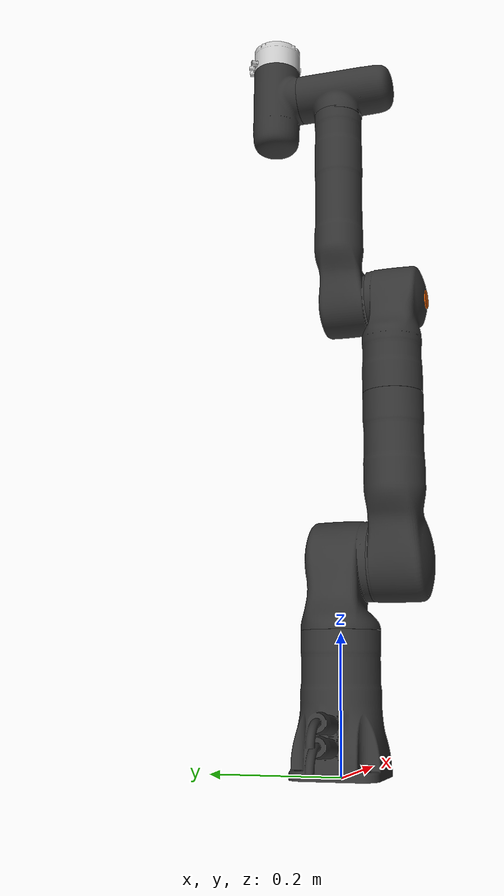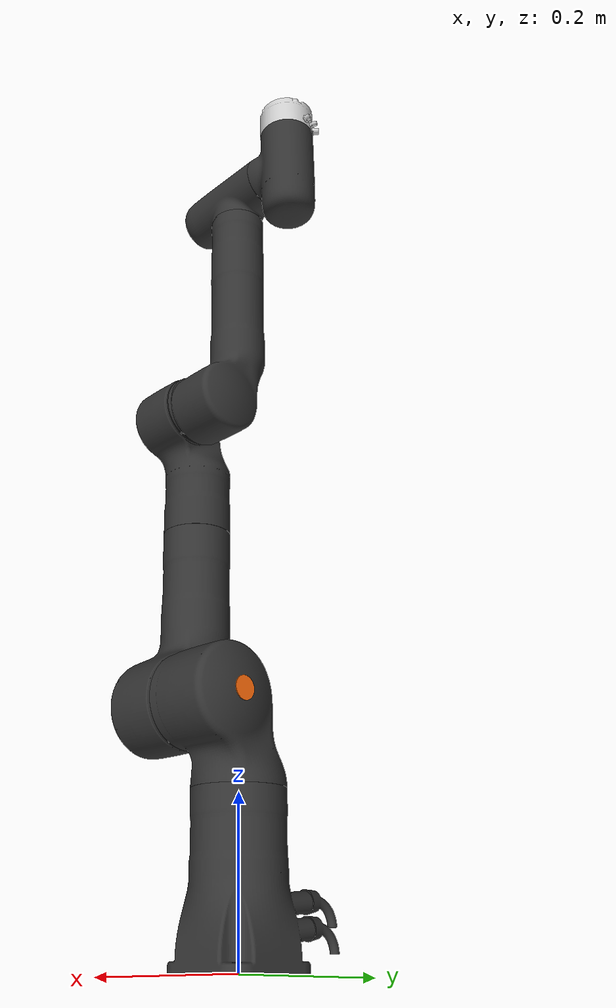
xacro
<?xml version="1.0" ?>
<robot name="kr2_robot_a810" model="a810" model-revision="051020-0" mechanical-revision="5" features="TIO" xmlns:xacro="http://www.ros.org/wiki/xacro">

  <!-- materials -->

  <material name="gray">
    <color rgba="0.5 0.5 0.5 1.0"/>
  </material>

  <material name="dark_gray">
    <color rgba="0.3 0.3 0.3 1.0"/>
  </material>

  <material name="light_gray">
    <color rgba="0.7 0.7 0.7 1.0"/>
  </material>

  <material name="black">
    <color rgba="0.1 0.1 0.1 1.0"/>
  </material>

  <material name="orange">
    <color rgba="${255/255} ${108/255} ${10/255} 1.0"/>
  </material>

  <!-- globals -->
  <xacro:property name="joints_damping" value="0.1" />

  <!-- links -->

  <!-- all dimensions should be input as measured in the drawing in mm and
       converted to real dimensions by multiplying with the scale property -->
  <xacro:property name="scale" value="0.001" />

  <xacro:property name="pi" value="3.14159265359" />
  <xacro:property name="pi_per_deg" value="${pi / 180.0}" />

  <xacro:property name="mass_multiplier" value="1.0" />

  <xacro:macro name="cylinder_inertia" params="mass radius length">
      <inertia ixx="0.003"
               ixy="0.0"
               ixz="0.0"
               iyy="0.003"
               iyz="0.0"
               izz="0.003"/>

  </xacro:macro>

  <xacro:macro name="visual_and_collision" params="xyz material rpy *geometry">
      <visual>
        <origin rpy="${rpy}" xyz="${xyz}" />
        <geometry>
          <xacro:insert_block name="geometry" />
        </geometry>
        <material name="${material}" />
      </visual>
      <collision>
        <origin rpy="${rpy}" xyz="${xyz}" />
        <geometry>
          <xacro:insert_block name="geometry" />
        </geometry>
      </collision>
  </xacro:macro>

  <link name="base">

    <xacro:property name="base_outer_radius" value="${ 80 * scale}" />
    <xacro:property name="base_inner_radius" value="${ 60 * scale}" />
    <xacro:property name="base_outer_height" value="${ 20 * scale}" />
    <xacro:property name="base_inner_height" value="${ 15 * scale}" />

    <xacro:property name="base_mass"         value="0.6" />
    <inertial>
      <origin rpy="0 0 0" xyz="0 0 0"/>
      <mass value="${base_mass*mass_multiplier}"/>
      <xacro:cylinder_inertia mass="${base_mass}"
                              radius="${base_outer_radius}"
                              length="${base_inner_height+base_outer_height}" />
    </inertial>

    <visual>
        <origin xyz="0 0 0" rpy="0 0 0" />
        <geometry>
          <mesh filename="package://kr_rviz_demo/meshes/a810/a810_Base.stl" scale="0.001 0.001 0.001"/>
        </geometry>
        <material name="">
          <color rgba="0.2 0.2 0.2 1" />
        </material>
    </visual>

  </link>

  <link name="link1">

    <xacro:property name="link1_radius" value="${ 60 * scale}" />
    <xacro:property name="link1_length" value="${ 308.7 * scale - 35 * scale}" />
    <xacro:property name="link1_hinge_length"  value="${  130   * scale}"   />
    <xacro:property name="link1_hinge_radius"  value="${  57.5 * scale}" />

    <xacro:property name="link1_mass"   value="4.58" />

    <inertial>
      <origin rpy="0 0 0" xyz="0 0 ${link1_length/2}"/>
      <mass value="${link1_mass*mass_multiplier}"/>
            <xacro:cylinder_inertia mass="${link1_mass}"
                                    radius="${link1_radius}"
                                    length="${link1_length}" />
    </inertial>

    <visual>
        <origin xyz="0 0 0.169" rpy="0 0 0" />
        <geometry>
          <mesh filename="package://kr_rviz_demo/meshes/a810/a810_Link2.stl" scale="0.001 0.001 0.001"/>
        </geometry>
        <material name="">
          <color rgba="0.2 0.2 0.2 1" />
        </material>
    </visual>

  </link>

  <link name="linkJ2">

    <xacro:property name="cylinderJ2_radius"   value="${15 * scale}"   />
    <xacro:property name="cylinderJ2_height"   value="${120 * scale}"   />
    <xacro:property name="linkJ2_mass"         value="6.1"   />

    <xacro:visual_and_collision rpy="${pi/2} 0 0"
                                xyz="0 ${-10 * scale} 0"
                                material="orange">
      <cylinder length="${cylinderJ2_height * 1.25}" radius="${cylinderJ2_radius}"/>
    </xacro:visual_and_collision>

    <inertial>
      <origin rpy="0 0 0" xyz="0 0 0"/>
      <mass value="${linkJ2_mass*mass_multiplier}"/>
      <xacro:cylinder_inertia mass="${linkJ2_mass}"
                              radius="${cylinderJ2_radius}"
                              length="${cylinderJ2_height}" />
    </inertial>

  </link>

  <link name="link2">

    <xacro:property name="link2_radius"   value="${ 45.0 * scale}"   />
    <xacro:property name="link2_length"   value="${ 274.0 * scale}"   />

    <xacro:property name="link2_mass"     value="0.43"   />

    <inertial>
      <origin rpy="0 0 0" xyz="0 0 ${ 175.0 * scale }"/>
      <mass value="${link2_mass*mass_multiplier}"/>
      <xacro:cylinder_inertia mass="${link2_mass}"
                              radius="${link2_radius}"
                              length="${link2_length}" />
    </inertial>

    <visual>
        <origin xyz="0.049 0 0" rpy="-${pi/2} 0 -${pi/2}" />
        <geometry>
          <mesh filename="package://kr_rviz_demo/meshes/a810/a810_Link3.stl" scale="0.001 0.001 0.001"/>
        </geometry>
        <material name="">
          <color rgba="0.2 0.2 0.2 1" />
        </material>
    </visual>

  </link>

  <link name="link3">

    <xacro:property name="link3_radius"        value="${  45.0 * scale}" />
    <xacro:property name="link3_length"        value="${ 142.9 * scale}" />
    <xacro:property name="link3_hinge_length"  value="${ 120.0 * scale}" />
    <xacro:property name="link3_hinge_radius"  value="${  45.0 * scale}" />
    <xacro:property name="link3_hinge_yoffset" value="${   6.5 * scale}" />

    <xacro:property name="link3_mass"     value="2.9" />

    <inertial>
      <origin rpy="0 0 0" xyz="0 0 0"/>
      <mass value="${link3_mass*mass_multiplier}"/>
      <xacro:cylinder_inertia mass="${link3_mass}"
                              radius="${link3_radius}"
                              length="${link3_length}" />
    </inertial>

    <visual>
        <origin xyz="-0.05 -0.0 0.315" rpy="${pi/2} 0 -${pi/2}" />
        <geometry>
          <mesh filename="package://kr_rviz_demo/meshes/a810/a810_Link4.stl" scale="0.001 0.001 0.001"/>
        </geometry>
        <material name="">
          <color rgba="0.2 0.2 0.2 1" />
        </material>
    </visual>

  </link>

  <link name="linkJ4">

    <xacro:property name="cylinderJ4_radius"   value="${15.0 * scale}"   />
    <xacro:property name="cylinderJ4_height"   value="${100 * scale}"   />
    <xacro:property name="linkJ4_mass"         value="3.8"   />

    <xacro:visual_and_collision rpy="${pi/2} 0 0"
                                xyz="0 ${13 * scale} 0"
                                material="orange">
      <cylinder length="${cylinderJ4_height * 1.29}" radius="${cylinderJ4_radius}"/>
    </xacro:visual_and_collision>

    <inertial>
      <origin rpy="0 0 0" xyz="0 ${6.5 * scale} 0"/>
      <mass value="${linkJ4_mass*mass_multiplier}"/>
      <xacro:cylinder_inertia mass="${linkJ4_mass}"
                              radius="${cylinderJ4_radius}"
                              length="${cylinderJ4_height}" />
    </inertial>

  </link>

  <link name="link4">

    <xacro:property name="link4_radius"   value="${  40.0 * scale}" />
    <xacro:property name="link4_length"   value="${ 271.0 * scale}" />

    <xacro:property name="link4_mass"     value="0.33" />

    <inertial>
      <origin rpy="0 0 0" xyz="0 0 ${ 168.0 * scale}"/>
      <mass value="${link4_mass*mass_multiplier}"/>
      <xacro:cylinder_inertia mass="${link4_mass}"
                              radius="${link4_radius}"
                              length="${link4_length}" />
    </inertial>

    <visual>
        <origin xyz="0.04 0.0005 0.0" rpy="-${pi/2} 0 ${pi/2}" />
        <geometry>
          <mesh filename="package://kr_rviz_demo/meshes/a810/a810_Link5.stl" scale="0.001 0.001 0.001"/>
        </geometry>
        <material name="">
          <color rgba="0.2 0.2 0.2 1" />
        </material>
    </visual>

  </link>

  <link name="link5">

    <xacro:property name="link5_radius"   value="${  40.0 * scale}" />
    <xacro:property name="link5_length"   value="${ 103.5 * scale}" />

    <xacro:property name="link5_mass"     value="1.7" />

    <inertial>
      <origin rpy="0 0 0" xyz="0 0 0"/>
      <mass value="${link5_mass*mass_multiplier}"/>
      <xacro:cylinder_inertia mass="${link5_mass}"
                              radius="${link5_radius}"
                              length="${link5_length}" />
    </inertial>

    <visual>
        <origin xyz="0.0 0.002 0.1035" rpy="0 0 -${pi/2}" />
        <geometry>
          <mesh filename="package://kr_rviz_demo/meshes/a810/a810_Link6.stl" scale="0.001 0.001 0.001"/>
        </geometry>
        <material name="">
          <color rgba="0.2 0.2 0.2 1" />
        </material>
    </visual>

  </link>

  <link name="linkJ6">

    <xacro:property name="cylinderJ6_radius"   value="${ 15.0 * scale}"   />
    <xacro:property name="cylinderJ6_height"   value="${ 110.0 * scale}"  />
    <xacro:property name="linkJ6_mass"         value="1.8"   />
    <inertial>
      <origin rpy="0 0 0" xyz="0 ${4.0 * scale} 0"/>
      <mass value="${linkJ6_mass*mass_multiplier}"/>
      <xacro:cylinder_inertia mass="${linkJ6_mass}"
                              radius="${cylinderJ6_radius}"
                              length="${cylinderJ6_height}" />
    </inertial>

  </link>

  <link name="link6">
    <xacro:property name="link6_radius"   value="${ 35.0 * scale}" />
    <xacro:property name="link6_length"   value="${ 66.5 * scale}" />
    <xacro:property name="link6_mass"     value="1.8" />
    <inertial>
      <origin rpy="0 0 0" xyz="0 0 ${4.0 * scale}"/>
      <mass value="${link6_mass*mass_multiplier}"/>
      <xacro:cylinder_inertia mass="${link6_mass}"
                              radius="${link6_radius}"
                              length="${link6_length}" />
    </inertial>
    <visual>
        <origin xyz="0.0 0.0 0.0" rpy="0 0 0" />
        <geometry>
          <mesh filename="package://kr_rviz_demo/meshes/a810/a810_Link7.stl" scale="0.001 0.001 0.001"/>
        </geometry>
        <material name="">
          <color rgba="0.2 0.2 0.2 1" />
        </material>
    </visual>
  </link>

  <link name="end_effector">

    <xacro:property name="end_effector_outer_radius" value="${ 35.5 * scale}" />
    <xacro:property name="end_effector_outer_length" value="${ 5.0 * scale}" />
    <xacro:property name="end_effector_inner_radius" value="${ 22.5 * scale}" />
    <xacro:property name="end_effector_inner_length" value="${ 5.0   * scale}" />

    <xacro:property name="end_effector_mass"         value="0.56"   />
    <visual>
        <origin xyz="0.0 -0.0 0.0" rpy="0 0 0" />
        <geometry>
          <mesh filename="package://kr_rviz_demo/meshes/a810/a810_ToolIO.stl" scale="0.001 0.001 0.001"/>
        </geometry>
        <material name="">
          <color rgba="0.8 0.8 0.8 1" />
        </material>
    </visual>
    <inertial>
      <origin rpy="0 0 0" xyz="0 0 ${-19.7 * scale}"/>
      <mass value="${end_effector_mass*mass_multiplier}"/>
      <xacro:cylinder_inertia mass="${end_effector_mass}"
                              radius="${end_effector_outer_radius}"
                              length="${end_effector_outer_length + end_effector_inner_length}" />
    </inertial>
  </link>

  <!-- joints -->
  <joint name="joint0" type="continuous">
    <parent link="base"/>
    <child link="link1"/>
    <origin rpy="0 0 0" xyz="0 0 ${base_inner_height + base_outer_height}"/>

    <axis xyz="0 0 1"/>

    <dynamics damping="${joints_damping}"/>
    <limit effort="204" velocity="${225/180*pi}" lower="${-2*pi}" upper="${2*pi}"/>

  </joint>

  <xacro:property name="joint1_xoffset"  value="${  50.0 * scale}" />
  <xacro:property name="joint1_yoffset"  value="${   0.0 * scale}" />
  <xacro:property name="joint1_zoffset"  value="${ 308.7 * scale - 35 * scale}" />

  <joint name="joint1" type="continuous">
    <parent link="link1"/>
    <child link="linkJ2"/>
    <origin rpy="0 0 0" xyz="${joint1_xoffset} ${joint1_yoffset} ${joint1_zoffset}"/>
    <axis xyz="0 1 0"/>

    <dynamics damping="${joints_damping}"/>
    <limit effort="204" velocity="${225/180*pi}" lower="${-70.0 * pi_per_deg}" upper="${(180/180)*pi}"/>

  </joint>

  <xacro:property name="jointPL2_xoffset"  value="${  -50.0 * scale}" />
  <xacro:property name="jointPL2_yoffset"  value="${  -85.7 * scale}" />

  <joint name="jointPL2" type="fixed">
    <parent link="linkJ2"/>
    <child link="link2"/>
    <origin rpy="0 0 0" xyz="${jointPL2_xoffset} ${jointPL2_yoffset} 0"/>
  </joint>

  <joint name="joint2" type="continuous">
    <parent link="link2"/>
    <child link="link3"/>
    <origin rpy="0 0 0" xyz="0 0 ${link2_length}"/>
    <axis xyz="0 0 1"/>

    <dynamics damping="${joints_damping}"/>
    <limit effort="85" velocity="${225/180*pi}" lower="${-2*pi}" upper="${2*pi}"/>

  </joint>

  <xacro:property name="joint3_xoffset"  value="${ 40.0 * scale}" />
  <xacro:property name="joint3_yoffset"  value="${ 0.0 * scale}" />
  <xacro:property name="joint3_zoffset"  value="${ 142.9 * scale}" />

  <joint name="joint3" type="continuous">
    <parent link="link3"/>
    <child link="linkJ4"/>
    <origin rpy="0 0 0" xyz="${joint3_xoffset} ${joint3_yoffset} ${joint3_zoffset}"/>
    <axis xyz="0 1 0"/>

    <dynamics damping="${joints_damping}"/>
    <limit effort="85" velocity="${225/180*pi}" lower="${-70.0 * pi_per_deg}" upper="${(180/180)*pi}"/>

  </joint>

  <xacro:property name="jointPL4_xoffset"  value="${ -40.0 * scale}" />
  <xacro:property name="jointPL4_yoffset"  value="${ 84.05 * scale}" />
  <xacro:property name="jointPL4_zoffset"  value="${ 0.0 * scale}" />

  <joint name="jointPL4" type="fixed">
    <parent link="linkJ4"/>
    <child link="link4"/>
    <origin rpy="0 0 0" xyz="${jointPL4_xoffset} ${jointPL4_yoffset} ${jointPL4_zoffset}"/>
  </joint>

  <joint name="joint4" type="continuous">
    <parent link="link4"/>
    <child link="link5"/>
    <origin rpy="0 0 0" xyz="0 0 ${link4_length}"/>
    <axis xyz="0 0 1"/>

    <dynamics damping="${joints_damping}"/>
    <limit effort="51" velocity="${225/180*pi}" lower="${-2*pi}" upper="${2*pi}"/>

  </joint>

  <xacro:property name="joint5_zoffset"  value="${ 103.5 * scale}" />

  <joint name="joint5" type="continuous">
    <parent link="link5"/>
    <child link="linkJ6"/>
    <origin rpy="0 0 0" xyz="0 0 ${joint5_zoffset}"/>
    <axis xyz="0 1 0"/>

    <dynamics damping="${joints_damping}"/>
    <limit effort="51" velocity="${225/180*pi}" lower="${-2*pi}" upper="${2*pi}"/>

  </joint>

  <xacro:property name="jointPL6_yoffset"  value="${ 111.0 * scale}" />
  <joint name="jointPL6" type="fixed">
    <parent link="linkJ6"/>
    <child link="link6"/>
    <origin rpy="0 0 0" xyz="0 ${jointPL6_yoffset} 0"/>
  </joint>

  <xacro:property name="joint6_zoffset"  value="${ 108.0 * scale}" />

  <joint name="joint6" type="continuous">
    <parent link="link6"/>
    <child link="end_effector"/>
    <origin rpy="0 0 0" xyz="0 0 ${joint6_zoffset}"/>
    <axis xyz="0 0 1"/>

    <dynamics damping="${joints_damping}"/>

    <limit effort="51" velocity="${225/180*pi}" lower="${-2*pi}" upper="${2*pi}"/>

  </joint>

  <!-- gazebo -->
  <!-- Used for fixing robot to Gazebo 'base_link' -->
  <link name="world"/>
  <joint name="joint_world" type="fixed">
    <parent link="world"/>
    <child link="base"/>
  </joint>
  <gazebo>
      <plugin filename="libgazebo_ros_control.so" name="ros_control">
          <robotNamespace>/kr2_robot</robotNamespace>
     </plugin>
  </gazebo>
  <gazebo reference="base">
    <material>Gazebo/Black</material>
  </gazebo>
  <gazebo reference="link1">
    <material>Gazebo/Grey</material>
  </gazebo>
  <gazebo reference="link2">
    <material>Gazebo/White</material>
  </gazebo>
  <gazebo reference="link3">
    <material>Gazebo/Grey</material>
  </gazebo>
  <gazebo reference="link4">
    <material>Gazebo/White</material>
  </gazebo>
  <gazebo reference="link5">
    <material>Gazebo/Grey</material>
  </gazebo>
  <gazebo reference="link6">
    <material>Gazebo/White</material>
  </gazebo>
  <gazebo reference="end_effector">
    <material>Gazebo/Black</material>
  </gazebo>

  <!-- Transmission mappings -->

  <transmission name="tran0">
    <type>transmission_interface/SimpleTransmission</type>
    <joint name="joint0">
      <hardwareInterface>hardware_interface/EffortJointInterface</hardwareInterface>
    </joint>
    <actuator name="motor0">
      <hardwareInterface>hardware_interface/EffortJointInterface</hardwareInterface>
      <mechanicalReduction>1</mechanicalReduction>
    </actuator>
  </transmission>

  <transmission name="tran1">
    <type>transmission_interface/SimpleTransmission</type>
    <joint name="joint1">
      <hardwareInterface>hardware_interface/EffortJointInterface</hardwareInterface>
    </joint>
    <actuator name="motor1">
      <hardwareInterface>hardware_interface/EffortJointInterface</hardwareInterface>
      <mechanicalReduction>1</mechanicalReduction>
    </actuator>
  </transmission>

  <transmission name="tran2">
    <type>transmission_interface/SimpleTransmission</type>
    <joint name="joint2">
      <hardwareInterface>hardware_interface/EffortJointInterface</hardwareInterface>
    </joint>
    <actuator name="motor2">
      <hardwareInterface>hardware_interface/EffortJointInterface</hardwareInterface>
      <mechanicalReduction>1</mechanicalReduction>
    </actuator>
  </transmission>

  <transmission name="tran3">
    <type>transmission_interface/SimpleTransmission</type>
    <joint name="joint3">
      <hardwareInterface>hardware_interface/EffortJointInterface</hardwareInterface>
    </joint>
    <actuator name="motor3">
      <hardwareInterface>hardware_interface/EffortJointInterface</hardwareInterface>
      <mechanicalReduction>1</mechanicalReduction>
    </actuator>
  </transmission>

  <transmission name="tran4">
    <type>transmission_interface/SimpleTransmission</type>
    <joint name="joint4">
      <hardwareInterface>hardware_interface/EffortJointInterface</hardwareInterface>
    </joint>
    <actuator name="motor4">
      <hardwareInterface>hardware_interface/EffortJointInterface</hardwareInterface>
      <mechanicalReduction>1</mechanicalReduction>
    </actuator>
  </transmission>

  <transmission name="tran5">
    <type>transmission_interface/SimpleTransmission</type>
    <joint name="joint5">
      <hardwareInterface>hardware_interface/EffortJointInterface</hardwareInterface>
    </joint>
    <actuator name="motor5">
      <hardwareInterface>hardware_interface/EffortJointInterface</hardwareInterface>
      <mechanicalReduction>1</mechanicalReduction>
    </actuator>
  </transmission>

  <transmission name="tran6">
    <type>transmission_interface/SimpleTransmission</type>
    <joint name="joint6">
      <hardwareInterface>hardware_interface/EffortJointInterface</hardwareInterface>
    </joint>
    <actuator name="motor6">
      <hardwareInterface>hardware_interface/EffortJointInterface</hardwareInterface>
      <mechanicalReduction>1</mechanicalReduction>
    </actuator>
  </transmission>

</robot>
